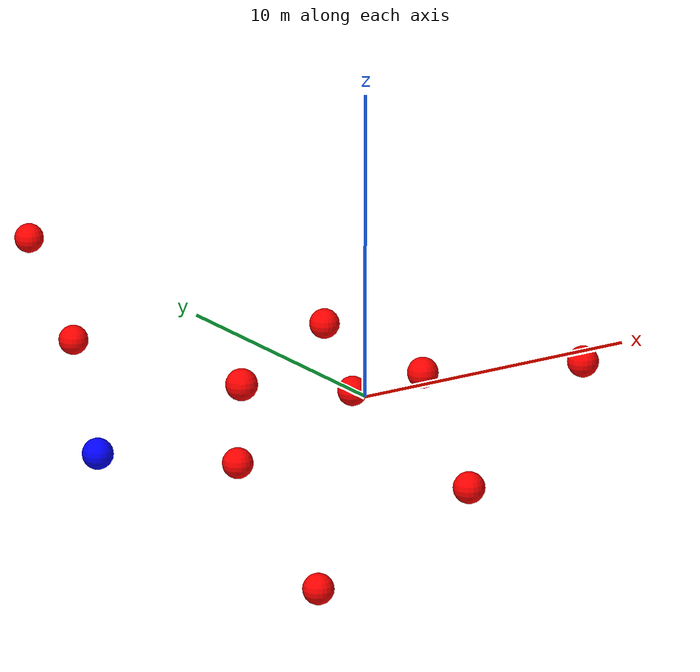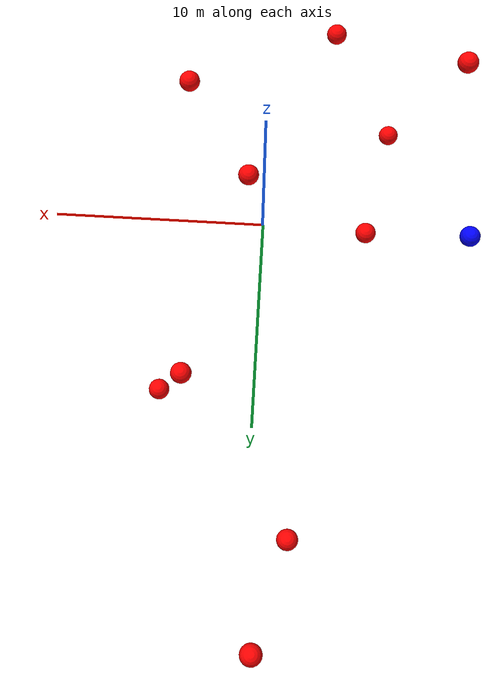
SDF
<?xml version="1.0" ?>
<sdf version="1.8">
    <world name="3d_world">
        <physics name="1ms" type="ode">
            <max_step_size>0.001</max_step_size>
            <real_time_factor>1.0</real_time_factor>
            <real_time_update_rate>1000.0</real_time_update_rate>
        </physics>
        <gravity>0 0 0</gravity>

        <plugin
            filename="gz-sim-physics-system"
            name="gz::sim::v8::systems::Physics">
        </plugin>
        <plugin
            filename="libignition-gazebo-user-commands-system.so"
            name="ignition::gazebo::systems::UserCommands">
        </plugin>
        <plugin
            filename="gz-sim-scene-broadcaster-system"
            name="gz::sim::systems::SceneBroadcaster">
        </plugin>
        <plugin
            filename="gz-sim-sensors-system"
            name="gz::sim::systems::Sensors">
            <render_engine>ogre2</render_engine>
        </plugin>

        <light type="directional" name="sun">
            <cast_shadows>true</cast_shadows>
            <pose>0 0 10 0 0 0</pose>
            <diffuse>0.8 0.8 0.8 1</diffuse>
            <specular>0.2 0.2 0.2 1</specular>
            <attenuation>
                <range>1000</range>
                <constant>0.9</constant>
                <linear>0.01</linear>
                <quadratic>0.001</quadratic>
            </attenuation>
            <direction>-0.5 0.1 -0.9</direction>
        </light>

        <!-- AGENTE -->
        <model name='agente' canonical_link='chassis'>
            <pose relative_to='world'>-10.0 0 0.0 0 0 0</pose>
            <link name='chassis'>
                <pose relative_to='__model__'>0.0 0 0.0 0 0 0</pose>
                <inertial>
                    <mass>1.14395</mass>
                    <inertia>
                        <ixx>0.095329</ixx>
                        <ixy>0</ixy>
                        <ixz>0</ixz>
                        <iyy>0.381317</iyy>
                        <iyz>0</iyz>
                        <izz>0.476646</izz>
                    </inertia>
                </inertial>
                <visual name='visual'>
                    <geometry>
                        <sphere>
                            <radius>0.5</radius>
                        </sphere>
                    </geometry>
                    <material>
                        <ambient>0.0 0.0 1.0 1</ambient>
                        <diffuse>0.0 0.0 1.0 1</diffuse>
                        <specular>0.0 0.0 1.0 1</specular>
                    </material>
                </visual>
                <collision name='collision'>
                    <geometry>
                        <sphere>
                            <radius>0.5</radius>
                        </sphere>
                    </geometry>
                </collision>
                <enable_gravity>false</enable_gravity>
            </link>

            <link name='lidar_link'>
                <pose relative_to='chassis'>0.0 0 0.1 0 0 0</pose>
                <inertial>
                    <mass>0.1</mass>
                    <inertia>
                        <ixx>0.000166667</ixx>
                        <iyy>0.000166667</iyy>
                        <izz>0.000166667</izz>
                    </inertia>
                </inertial>
                <collision name='collision'>
                    <geometry>
                        <cylinder>
                            <radius>0.05</radius>
                            <length>0.1</length>
                        </cylinder>
                    </geometry>
                </collision>
                <visual name='visual'>
                    <geometry>
                        <cylinder>
                            <radius>0.05</radius>
                            <length>0.1</length>
                        </cylinder>
                    </geometry>
                    <material>
                        <ambient>0.0 1.0 0.0 1</ambient>
                        <diffuse>0.0 1.0 0.0 1</diffuse>
                        <specular>0.0 1.0 0.0 1</specular>
                    </material>
                </visual>
                <sensor name="lidar" type="gpu_lidar">
                    <topic>scan</topic>
                    <update_rate>10</update_rate>
                    <lidar>
                        <scan>
                            <horizontal>
                                <samples>5000</samples>
                                <resolution>1</resolution>
                                <min_angle>-3.14159</min_angle>
                                <max_angle>3.14159</max_angle>
                            </horizontal>
                        </scan>
                        <range>
                            <min>0.1</min>
                            <max>10.0</max>
                            <resolution>0.01</resolution>
                        </range>
                    </lidar>
                    <visualize>true</visualize>
                    <always_on>true</always_on>
                    <update_rate>10</update_rate>
                    <pose_frame>lidar</pose_frame>
                </sensor>
                <enable_gravity>false</enable_gravity>
            </link>

            <joint name="lidar_joint" type="fixed">
                <parent>chassis</parent>
                <child>lidar_link</child>
            </joint>

            <plugin
                filename="ignition-gazebo-joint-state-publisher-system"
                name="ignition::gazebo::systems::JointStatePublisher">
            </plugin>
            <plugin
                filename="ignition-gazebo-odometry-publisher-system"
                name="ignition::gazebo::systems::OdometryPublisher">
                <dimensions>3</dimensions>
            </plugin>
            <plugin
                filename="ignition-gazebo-velocity-control-system"
                name="ignition::gazebo::systems::VelocityControl">
                <initial_linear>0.0 0 0</initial_linear>
                <initial_angular>0 0 0.0</initial_angular>
            </plugin>
            <plugin
                filename="libignition-gazebo-pose-publisher-system.so"
                name="ignition::gazebo::systems::PosePublisher">
                <topic>/agente/pose</topic>
                <frame_id>agente</frame_id>
                <update_rate>30</update_rate>
            </plugin>
        </model>

        <!-- OBSTACLE 1 -->
        <model name='obstacle_1' canonical_link='obstacle'>
            <static>false</static>
            <pose relative_to='world'>-6.37 -6.97 -3.08 0 0 0</pose>
            <link name='obstacle'>
                <pose relative_to='__model__'>0.0 0 0.0 0 0 0</pose>
                <visual name='visual'>
                    <geometry>
                        <sphere>
                            <radius>0.50</radius>
                        </sphere>
                    </geometry>
                    <material>
                        <ambient>1.0 0.0 0.0 1</ambient>
                        <diffuse>1.0 0.0 0.0 1</diffuse>
                        <specular>1.0 0.0 0.0 1</specular>
                    </material>
                </visual>
                <collision name='collision'>
                    <geometry>
                        <sphere>
                            <radius>0.50</radius>
                        </sphere>
                    </geometry>
                </collision>
                <enable_gravity>false</enable_gravity>
            </link>

            <plugin
                filename="ignition-gazebo-velocity-control-system"
                name="ignition::gazebo::systems::VelocityControl">
                <initial_linear>1.40 1.31 0.58</initial_linear>
                <initial_angular>0 0 0</initial_angular>
            </plugin>

            <plugin
                filename="ignition-gazebo-odometry-publisher-system"
                name="ignition::gazebo::systems::OdometryPublisher">
                <dimensions>3</dimensions>
            </plugin>
        </model>

        <!-- OBSTACLE 2 -->
        <model name='obstacle_2' canonical_link='obstacle'>
            <static>false</static>
            <pose relative_to='world'>-1.90 14.66 -1.78 0 0 0</pose>
            <link name='obstacle'>
                <pose relative_to='__model__'>0.0 0 0.0 0 0 0</pose>
                <visual name='visual'>
                    <geometry>
                        <sphere>
                            <radius>0.50</radius>
                        </sphere>
                    </geometry>
                    <material>
                        <ambient>1.0 0.0 0.0 1</ambient>
                        <diffuse>1.0 0.0 0.0 1</diffuse>
                        <specular>1.0 0.0 0.0 1</specular>
                    </material>
                </visual>
                <collision name='collision'>
                    <geometry>
                        <sphere>
                            <radius>0.50</radius>
                        </sphere>
                    </geometry>
                </collision>
                <enable_gravity>false</enable_gravity>
            </link>

            <plugin
                filename="ignition-gazebo-velocity-control-system"
                name="ignition::gazebo::systems::VelocityControl">
                <initial_linear>0.25 -1.97 0.24</initial_linear>
                <initial_angular>0 0 0</initial_angular>
            </plugin>

            <plugin
                filename="ignition-gazebo-odometry-publisher-system"
                name="ignition::gazebo::systems::OdometryPublisher">
                <dimensions>3</dimensions>
            </plugin>
        </model>

        <!-- OBSTACLE 3 -->
        <model name='obstacle_3' canonical_link='obstacle'>
            <static>false</static>
            <pose relative_to='world'>-0.53 19.71 0.20 0 0 0</pose>
            <link name='obstacle'>
                <pose relative_to='__model__'>0.0 0 0.0 0 0 0</pose>
                <visual name='visual'>
                    <geometry>
                        <sphere>
                            <radius>0.50</radius>
                        </sphere>
                    </geometry>
                    <material>
                        <ambient>1.0 0.0 0.0 1</ambient>
                        <diffuse>1.0 0.0 0.0 1</diffuse>
                        <specular>1.0 0.0 0.0 1</specular>
                    </material>
                </visual>
                <collision name='collision'>
                    <geometry>
                        <sphere>
                            <radius>0.50</radius>
                        </sphere>
                    </geometry>
                </collision>
                <enable_gravity>false</enable_gravity>
            </link>

            <plugin
                filename="ignition-gazebo-velocity-control-system"
                name="ignition::gazebo::systems::VelocityControl">
                <initial_linear>-0.04 -2.00 -0.02</initial_linear>
                <initial_angular>0 0 0</initial_angular>
            </plugin>

            <plugin
                filename="ignition-gazebo-odometry-publisher-system"
                name="ignition::gazebo::systems::OdometryPublisher">
                <dimensions>3</dimensions>
            </plugin>
        </model>

        <!-- OBSTACLE 4 -->
        <model name='obstacle_4' canonical_link='obstacle'>
            <static>false</static>
            <pose relative_to='world'>3.40 7.54 -0.22 0 0 0</pose>
            <link name='obstacle'>
                <pose relative_to='__model__'>0.0 0 0.0 0 0 0</pose>
                <visual name='visual'>
                    <geometry>
                        <sphere>
                            <radius>0.50</radius>
                        </sphere>
                    </geometry>
                    <material>
                        <ambient>1.0 0.0 0.0 1</ambient>
                        <diffuse>1.0 0.0 0.0 1</diffuse>
                        <specular>1.0 0.0 0.0 1</specular>
                    </material>
                </visual>
                <collision name='collision'>
                    <geometry>
                        <sphere>
                            <radius>0.50</radius>
                        </sphere>
                    </geometry>
                </collision>
                <enable_gravity>false</enable_gravity>
            </link>

            <plugin
                filename="ignition-gazebo-velocity-control-system"
                name="ignition::gazebo::systems::VelocityControl">
                <initial_linear>-0.92 -1.78 0.05</initial_linear>
                <initial_angular>0 0 0</initial_angular>
            </plugin>

            <plugin
                filename="ignition-gazebo-odometry-publisher-system"
                name="ignition::gazebo::systems::OdometryPublisher">
                <dimensions>3</dimensions>
            </plugin>
        </model>

        <!-- OBSTACLE 5 -->
        <model name='obstacle_5' canonical_link='obstacle'>
            <static>false</static>
            <pose relative_to='world'>-5.08 -0.39 -1.14 0 0 0</pose>
            <link name='obstacle'>
                <pose relative_to='__model__'>0.0 0 0.0 0 0 0</pose>
                <visual name='visual'>
                    <geometry>
                        <sphere>
                            <radius>0.50</radius>
                        </sphere>
                    </geometry>
                    <material>
                        <ambient>1.0 0.0 0.0 1</ambient>
                        <diffuse>1.0 0.0 0.0 1</diffuse>
                        <specular>1.0 0.0 0.0 1</specular>
                    </material>
                </visual>
                <collision name='collision'>
                    <geometry>
                        <sphere>
                            <radius>0.50</radius>
                        </sphere>
                    </geometry>
                </collision>
                <enable_gravity>false</enable_gravity>
            </link>

            <plugin
                filename="ignition-gazebo-velocity-control-system"
                name="ignition::gazebo::systems::VelocityControl">
                <initial_linear>1.14 0.11 0.31</initial_linear>
                <initial_angular>0 0 0</initial_angular>
            </plugin>

            <plugin
                filename="ignition-gazebo-odometry-publisher-system"
                name="ignition::gazebo::systems::OdometryPublisher">
                <dimensions>3</dimensions>
            </plugin>
        </model>

        <!-- OBSTACLE 6 -->
        <model name='obstacle_6' canonical_link='obstacle'>
            <static>false</static>
            <pose relative_to='world'>3.92 -6.40 2.25 0 0 0</pose>
            <link name='obstacle'>
                <pose relative_to='__model__'>0.0 0 0.0 0 0 0</pose>
                <visual name='visual'>
                    <geometry>
                        <sphere>
                            <radius>0.50</radius>
                        </sphere>
                    </geometry>
                    <material>
                        <ambient>1.0 0.0 0.0 1</ambient>
                        <diffuse>1.0 0.0 0.0 1</diffuse>
                        <specular>1.0 0.0 0.0 1</specular>
                    </material>
                </visual>
                <collision name='collision'>
                    <geometry>
                        <sphere>
                            <radius>0.50</radius>
                        </sphere>
                    </geometry>
                </collision>
                <enable_gravity>false</enable_gravity>
            </link>

            <plugin
                filename="ignition-gazebo-velocity-control-system"
                name="ignition::gazebo::systems::VelocityControl">
                <initial_linear>-0.04 1.17 -0.41</initial_linear>
                <initial_angular>0 0 0</initial_angular>
            </plugin>

            <plugin
                filename="ignition-gazebo-odometry-publisher-system"
                name="ignition::gazebo::systems::OdometryPublisher">
                <dimensions>3</dimensions>
            </plugin>
        </model>

        <!-- OBSTACLE 7 -->
        <model name='obstacle_7' canonical_link='obstacle'>
            <static>false</static>
            <pose relative_to='world'>-9.17 -7.01 4.08 0 0 0</pose>
            <link name='obstacle'>
                <pose relative_to='__model__'>0.0 0 0.0 0 0 0</pose>
                <visual name='visual'>
                    <geometry>
                        <sphere>
                            <radius>0.50</radius>
                        </sphere>
                    </geometry>
                    <material>
                        <ambient>1.0 0.0 0.0 1</ambient>
                        <diffuse>1.0 0.0 0.0 1</diffuse>
                        <specular>1.0 0.0 0.0 1</specular>
                    </material>
                </visual>
                <collision name='collision'>
                    <geometry>
                        <sphere>
                            <radius>0.50</radius>
                        </sphere>
                    </geometry>
                </collision>
                <enable_gravity>false</enable_gravity>
            </link>

            <plugin
                filename="ignition-gazebo-velocity-control-system"
                name="ignition::gazebo::systems::VelocityControl">
                <initial_linear>1.62 1.01 -0.59</initial_linear>
                <initial_angular>0 0 0</initial_angular>
            </plugin>

            <plugin
                filename="ignition-gazebo-odometry-publisher-system"
                name="ignition::gazebo::systems::OdometryPublisher">
                <dimensions>3</dimensions>
            </plugin>
        </model>

        <!-- OBSTACLE 8 -->
        <model name='obstacle_8' canonical_link='obstacle'>
            <static>false</static>
            <pose relative_to='world'>-3.22 -10.54 0.66 0 0 0</pose>
            <link name='obstacle'>
                <pose relative_to='__model__'>0.0 0 0.0 0 0 0</pose>
                <visual name='visual'>
                    <geometry>
                        <sphere>
                            <radius>0.50</radius>
                        </sphere>
                    </geometry>
                    <material>
                        <ambient>1.0 0.0 0.0 1</ambient>
                        <diffuse>1.0 0.0 0.0 1</diffuse>
                        <specular>1.0 0.0 0.0 1</specular>
                    </material>
                </visual>
                <collision name='collision'>
                    <geometry>
                        <sphere>
                            <radius>0.50</radius>
                        </sphere>
                    </geometry>
                </collision>
                <enable_gravity>false</enable_gravity>
            </link>

            <plugin
                filename="ignition-gazebo-velocity-control-system"
                name="ignition::gazebo::systems::VelocityControl">
                <initial_linear>0.55 1.92 -0.12</initial_linear>
                <initial_angular>0 0 0</initial_angular>
            </plugin>

            <plugin
                filename="ignition-gazebo-odometry-publisher-system"
                name="ignition::gazebo::systems::OdometryPublisher">
                <dimensions>3</dimensions>
            </plugin>
        </model>

        <!-- OBSTACLE 9 -->
        <model name='obstacle_9' canonical_link='obstacle'>
            <static>false</static>
            <pose relative_to='world'>4.61 7.70 -2.82 0 0 0</pose>
            <link name='obstacle'>
                <pose relative_to='__model__'>0.0 0 0.0 0 0 0</pose>
                <visual name='visual'>
                    <geometry>
                        <sphere>
                            <radius>0.50</radius>
                        </sphere>
                    </geometry>
                    <material>
                        <ambient>1.0 0.0 0.0 1</ambient>
                        <diffuse>1.0 0.0 0.0 1</diffuse>
                        <specular>1.0 0.0 0.0 1</specular>
                    </material>
                </visual>
                <collision name='collision'>
                    <geometry>
                        <sphere>
                            <radius>0.50</radius>
                        </sphere>
                    </geometry>
                </collision>
                <enable_gravity>false</enable_gravity>
            </link>

            <plugin
                filename="ignition-gazebo-velocity-control-system"
                name="ignition::gazebo::systems::VelocityControl">
                <initial_linear>-1.11 -1.56 0.57</initial_linear>
                <initial_angular>0 0 0</initial_angular>
            </plugin>

            <plugin
                filename="ignition-gazebo-odometry-publisher-system"
                name="ignition::gazebo::systems::OdometryPublisher">
                <dimensions>3</dimensions>
            </plugin>
        </model>

        <!-- OBSTACLE 10 -->
        <model name='obstacle_10' canonical_link='obstacle'>
            <static>false</static>
            <pose relative_to='world'>0.81 -2.05 1.24 0 0 0</pose>
            <link name='obstacle'>
                <pose relative_to='__model__'>0.0 0 0.0 0 0 0</pose>
                <visual name='visual'>
                    <geometry>
                        <sphere>
                            <radius>0.50</radius>
                        </sphere>
                    </geometry>
                    <material>
                        <ambient>1.0 0.0 0.0 1</ambient>
                        <diffuse>1.0 0.0 0.0 1</diffuse>
                        <specular>1.0 0.0 0.0 1</specular>
                    </material>
                </visual>
                <collision name='collision'>
                    <geometry>
                        <sphere>
                            <radius>0.50</radius>
                        </sphere>
                    </geometry>
                </collision>
                <enable_gravity>false</enable_gravity>
            </link>

            <plugin
                filename="ignition-gazebo-velocity-control-system"
                name="ignition::gazebo::systems::VelocityControl">
                <initial_linear>-0.09 0.49 -0.30</initial_linear>
                <initial_angular>0 0 0</initial_angular>
            </plugin>

            <plugin
                filename="ignition-gazebo-odometry-publisher-system"
                name="ignition::gazebo::systems::OdometryPublisher">
                <dimensions>3</dimensions>
            </plugin>
        </model>

    </world>
</sdf>
